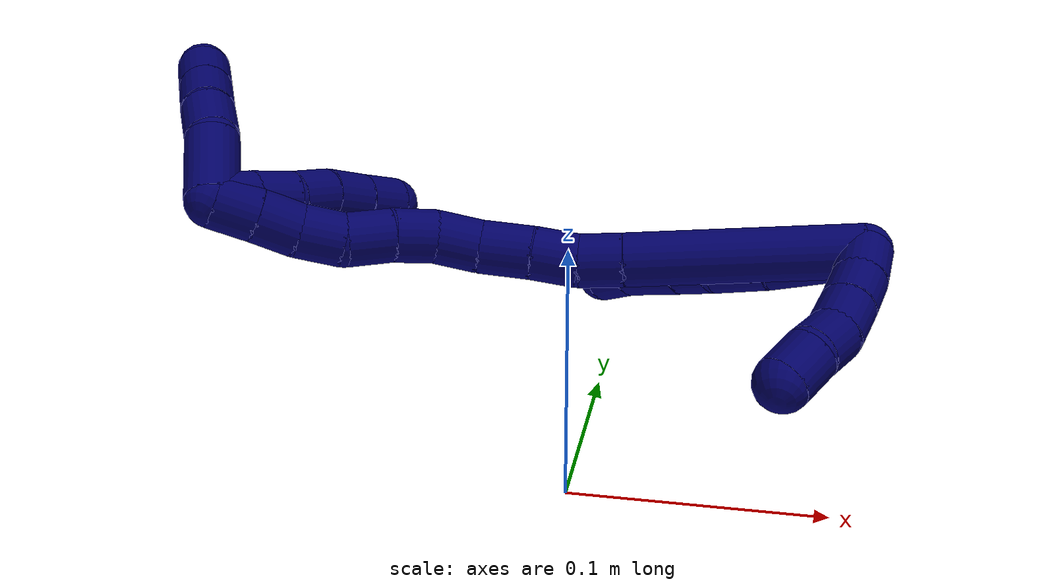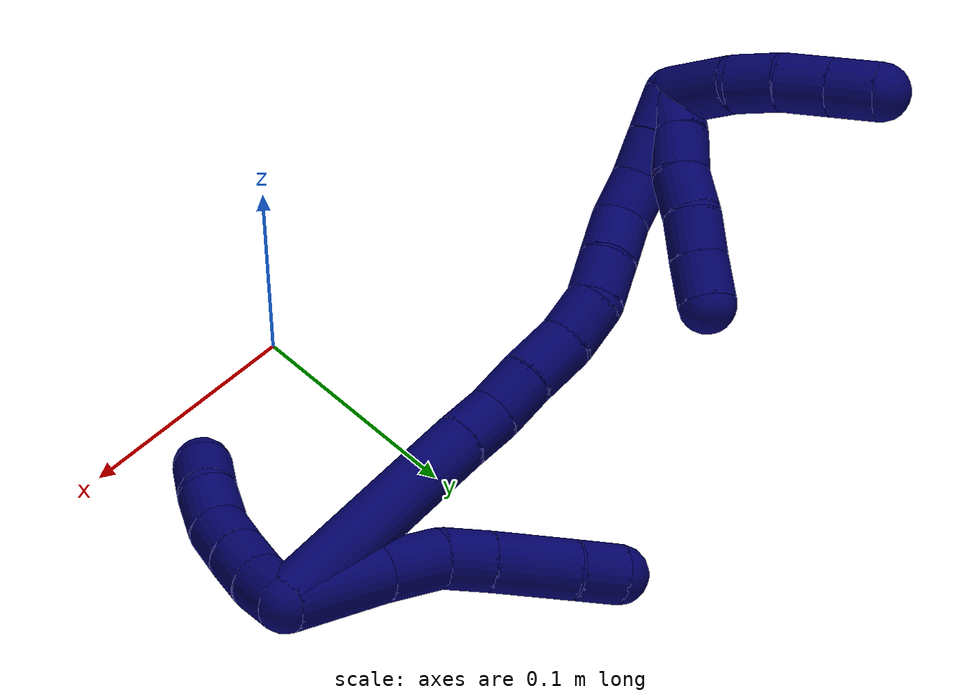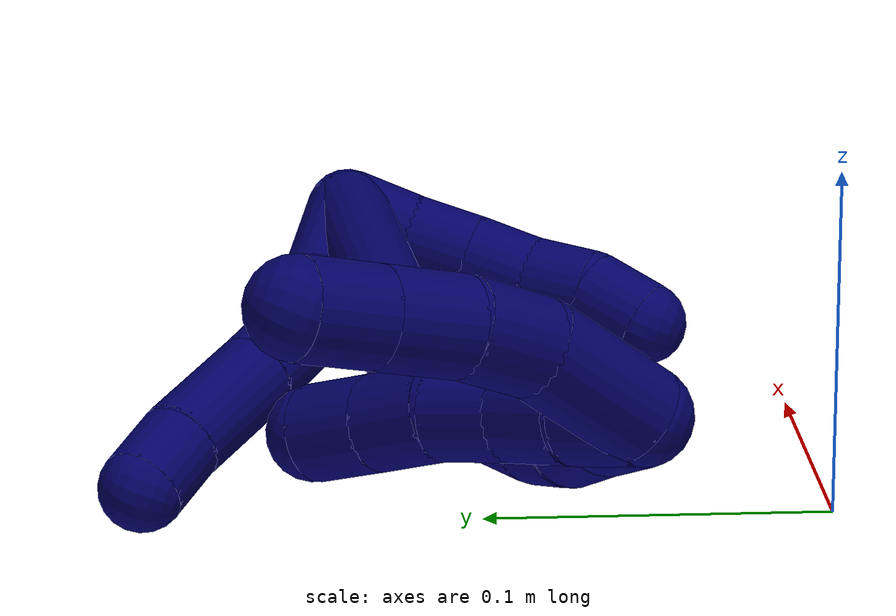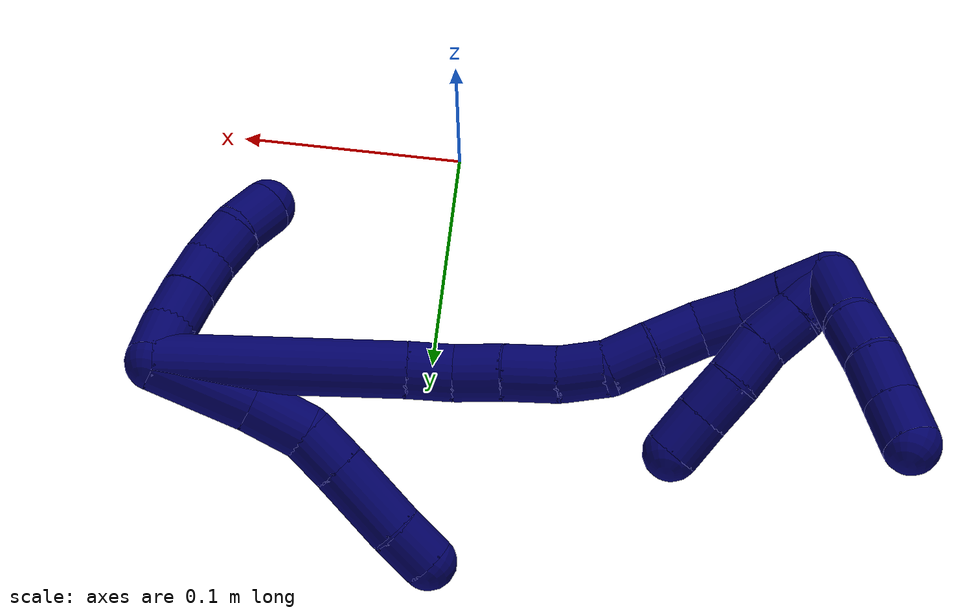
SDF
<sdf version="1.7">
 <world name="default">
  <model name="7">
   <static>0</static>
   <link name="7">
    <collision name="collision-cylinder-e_1_2_8">
     <pose>-0.02218 0.004658 -0.000812 -1.74347 -1.36075 1.53274</pose>
     <geometry><cylinder><radius>0.0125</radius><length>0.045357</length></cylinder></geometry>
     <surface>
      <friction><ode><mu>1.16</mu><mu2>1.16</mu2><slip1>0</slip1><slip2>0</slip2></ode></friction>
      <contact><ode><kp>1e+06</kp><kd>1</kd><max_vel>0</max_vel><min_depth>0.001</min_depth></ode></contact>
     </surface>
    </collision>
    <visual name="visual-cylinder-e_1_2_8">
     <pose>-0.02218 0.004658 -0.000812 -1.74347 -1.36075 1.53274</pose>
     <geometry><cylinder><radius>0.0125</radius><length>0.045357</length></cylinder></geometry>
     <material><ambient>0.003922 0 0.403922 1</ambient></material>
    </visual>
    <collision name="collision-cylinder-e_2_8_9">
     <pose>-0.057589 0.012104 -0.000741 -1.26364 -1.35324 1.06278</pose>
     <geometry><cylinder><radius>0.0125</radius><length>0.027096</length></cylinder></geometry>
     <surface>
      <friction><ode><mu>1.16</mu><mu2>1.16</mu2><slip1>0</slip1><slip2>0</slip2></ode></friction>
      <contact><ode><kp>1e+06</kp><kd>1</kd><max_vel>0</max_vel><min_depth>0.001</min_depth></ode></contact>
     </surface>
    </collision>
    <visual name="visual-cylinder-e_2_8_9">
     <pose>-0.057589 0.012104 -0.000741 -1.26364 -1.35324 1.06278</pose>
     <geometry><cylinder><radius>0.0125</radius><length>0.027096</length></cylinder></geometry>
     <material><ambient>0.003922 0 0.403922 1</ambient></material>
    </visual>
    <collision name="collision-cylinder-e_3_9_10">
     <pose>-0.079904 0.018822 0.003365 -0.884162 -1.06079 0.541529</pose>
     <geometry><cylinder><radius>0.0125</radius><length>0.020823</length></cylinder></geometry>
     <surface>
      <friction><ode><mu>1.16</mu><mu2>1.16</mu2><slip1>0</slip1><slip2>0</slip2></ode></friction>
      <contact><ode><kp>1e+06</kp><kd>1</kd><max_vel>0</max_vel><min_depth>0.001</min_depth></ode></contact>
     </surface>
    </collision>
    <visual name="visual-cylinder-e_3_9_10">
     <pose>-0.079904 0.018822 0.003365 -0.884162 -1.06079 0.541529</pose>
     <geometry><cylinder><radius>0.0125</radius><length>0.020823</length></cylinder></geometry>
     <material><ambient>0.003922 0 0.403922 1</ambient></material>
    </visual>
    <collision name="collision-cylinder-e_4_10_11">
     <pose>-0.104548 0.029785 0.012709 -0.854528 -1.03088 0.504887</pose>
     <geometry><cylinder><radius>0.0125</radius><length>0.036274</length></cylinder></geometry>
     <surface>
      <friction><ode><mu>1.16</mu><mu2>1.16</mu2><slip1>0</slip1><slip2>0</slip2></ode></friction>
      <contact><ode><kp>1e+06</kp><kd>1</kd><max_vel>0</max_vel><min_depth>0.001</min_depth></ode></contact>
     </surface>
    </collision>
    <visual name="visual-cylinder-e_4_10_11">
     <pose>-0.104548 0.029785 0.012709 -0.854528 -1.03088 0.504887</pose>
     <geometry><cylinder><radius>0.0125</radius><length>0.036274</length></cylinder></geometry>
     <material><ambient>0.003922 0 0.403922 1</ambient></material>
    </visual>
    <collision name="collision-cylinder-e_5_11_6">
     <pose>-0.128963 0.041339 0.021207 -1.08688 -1.04773 0.671563</pose>
     <geometry><cylinder><radius>0.0125</radius><length>0.02045</length></cylinder></geometry>
     <surface>
      <friction><ode><mu>1.16</mu><mu2>1.16</mu2><slip1>0</slip1><slip2>0</slip2></ode></friction>
      <contact><ode><kp>1e+06</kp><kd>1</kd><max_vel>0</max_vel><min_depth>0.001</min_depth></ode></contact>
     </surface>
    </collision>
    <visual name="visual-cylinder-e_5_11_6">
     <pose>-0.128963 0.041339 0.021207 -1.08688 -1.04773 0.671563</pose>
     <geometry><cylinder><radius>0.0125</radius><length>0.02045</length></cylinder></geometry>
     <material><ambient>0.003922 0 0.403922 1</ambient></material>
    </visual>
    <collision name="collision-cylinder-e_1_2_12">
     <pose>-1.1e-05 3.8e-05 -0.01 -3.13783 -0.001119 0.578042</pose>
     <geometry><cylinder><radius>0.0125</radius><length>0.02</length></cylinder></geometry>
     <surface>
      <friction><ode><mu>1.16</mu><mu2>1.16</mu2><slip1>0</slip1><slip2>0</slip2></ode></friction>
      <contact><ode><kp>1e+06</kp><kd>1</kd><max_vel>0</max_vel><min_depth>0.001</min_depth></ode></contact>
     </surface>
    </collision>
    <visual name="visual-cylinder-e_1_2_12">
     <pose>-1.1e-05 3.8e-05 -0.01 -3.13783 -0.001119 0.578042</pose>
     <geometry><cylinder><radius>0.0125</radius><length>0.02</length></cylinder></geometry>
     <material><ambient>0.003922 0 0.403922 1</ambient></material>
    </visual>
    <collision name="collision-cylinder-e_2_12_13">
     <pose>-0.00111 -0.000955 -0.029887 3.03773 -0.109009 -1.61923</pose>
     <geometry><cylinder><radius>0.0125</radius><length>0.02</length></cylinder></geometry>
     <surface>
      <friction><ode><mu>1.16</mu><mu2>1.16</mu2><slip1>0</slip1><slip2>0</slip2></ode></friction>
      <contact><ode><kp>1e+06</kp><kd>1</kd><max_vel>0</max_vel><min_depth>0.001</min_depth></ode></contact>
     </surface>
    </collision>
    <visual name="visual-cylinder-e_2_12_13">
     <pose>-0.00111 -0.000955 -0.029887 3.03773 -0.109009 -1.61923</pose>
     <geometry><cylinder><radius>0.0125</radius><length>0.02</length></cylinder></geometry>
     <material><ambient>0.003922 0 0.403922 1</ambient></material>
    </visual>
    <collision name="collision-cylinder-e_3_13_14">
     <pose>-0.003742 -0.002809 -0.04962 3.05823 -0.154988 -2.15584</pose>
     <geometry><cylinder><radius>0.0125</radius><length>0.02</length></cylinder></geometry>
     <surface>
      <friction><ode><mu>1.16</mu><mu2>1.16</mu2><slip1>0</slip1><slip2>0</slip2></ode></friction>
      <contact><ode><kp>1e+06</kp><kd>1</kd><max_vel>0</max_vel><min_depth>0.001</min_depth></ode></contact>
     </surface>
    </collision>
    <visual name="visual-cylinder-e_3_13_14">
     <pose>-0.003742 -0.002809 -0.04962 3.05823 -0.154988 -2.15584</pose>
     <geometry><cylinder><radius>0.0125</radius><length>0.02</length></cylinder></geometry>
     <material><ambient>0.003922 0 0.403922 1</ambient></material>
    </visual>
    <collision name="collision-cylinder-e_4_14_15">
     <pose>-0.008541 -0.006413 -0.068503 2.84301 -0.331585 -1.67719</pose>
     <geometry><cylinder><radius>0.0125</radius><length>0.02</length></cylinder></geometry>
     <surface>
      <friction><ode><mu>1.16</mu><mu2>1.16</mu2><slip1>0</slip1><slip2>0</slip2></ode></friction>
      <contact><ode><kp>1e+06</kp><kd>1</kd><max_vel>0</max_vel><min_depth>0.001</min_depth></ode></contact>
     </surface>
    </collision>
    <visual name="visual-cylinder-e_4_14_15">
     <pose>-0.008541 -0.006413 -0.068503 2.84301 -0.331585 -1.67719</pose>
     <geometry><cylinder><radius>0.0125</radius><length>0.02</length></cylinder></geometry>
     <material><ambient>0.003922 0 0.403922 1</ambient></material>
    </visual>
    <collision name="collision-cylinder-e_5_15_5">
     <pose>-0.01603 -0.009386 -0.086597 3.12038 -0.437184 -3.04618</pose>
     <geometry><cylinder><radius>0.0125</radius><length>0.02</length></cylinder></geometry>
     <surface>
      <friction><ode><mu>1.16</mu><mu2>1.16</mu2><slip1>0</slip1><slip2>0</slip2></ode></friction>
      <contact><ode><kp>1e+06</kp><kd>1</kd><max_vel>0</max_vel><min_depth>0.001</min_depth></ode></contact>
     </surface>
    </collision>
    <visual name="visual-cylinder-e_5_15_5">
     <pose>-0.01603 -0.009386 -0.086597 3.12038 -0.437184 -3.04618</pose>
     <geometry><cylinder><radius>0.0125</radius><length>0.02</length></cylinder></geometry>
     <material><ambient>0.003922 0 0.403922 1</ambient></material>
    </visual>
    <collision name="collision-cylinder-e_1_2_16">
     <pose>-0.052044 -0.005808 -0.014183 2.75291 -1.28441 -2.62698</pose>
     <geometry><cylinder><radius>0.0125</radius><length>0.108507</length></cylinder></geometry>
     <surface>
      <friction><ode><mu>1.16</mu><mu2>1.16</mu2><slip1>0</slip1><slip2>0</slip2></ode></friction>
      <contact><ode><kp>1e+06</kp><kd>1</kd><max_vel>0</max_vel><min_depth>0.001</min_depth></ode></contact>
     </surface>
    </collision>
    <visual name="visual-cylinder-e_1_2_16">
     <pose>-0.052044 -0.005808 -0.014183 2.75291 -1.28441 -2.62698</pose>
     <geometry><cylinder><radius>0.0125</radius><length>0.108507</length></cylinder></geometry>
     <material><ambient>0.003922 0 0.403922 1</ambient></material>
    </visual>
    <collision name="collision-cylinder-e_2_16_17">
     <pose>-0.114121 -0.012607 -0.030697 2.73981 -1.32347 -2.63015</pose>
     <geometry><cylinder><radius>0.0125</radius><length>0.020696</length></cylinder></geometry>
     <surface>
      <friction><ode><mu>1.16</mu><mu2>1.16</mu2><slip1>0</slip1><slip2>0</slip2></ode></friction>
      <contact><ode><kp>1e+06</kp><kd>1</kd><max_vel>0</max_vel><min_depth>0.001</min_depth></ode></contact>
     </surface>
    </collision>
    <visual name="visual-cylinder-e_2_16_17">
     <pose>-0.114121 -0.012607 -0.030697 2.73981 -1.32347 -2.63015</pose>
     <geometry><cylinder><radius>0.0125</radius><length>0.020696</length></cylinder></geometry>
     <material><ambient>0.003922 0 0.403922 1</ambient></material>
    </visual>
    <collision name="collision-cylinder-e_3_17_18">
     <pose>-0.134291 -0.016784 -0.034694 2.05241 -1.22988 -1.72386</pose>
     <geometry><cylinder><radius>0.0125</radius><length>0.021511</length></cylinder></geometry>
     <surface>
      <friction><ode><mu>1.16</mu><mu2>1.16</mu2><slip1>0</slip1><slip2>0</slip2></ode></friction>
      <contact><ode><kp>1e+06</kp><kd>1</kd><max_vel>0</max_vel><min_depth>0.001</min_depth></ode></contact>
     </surface>
    </collision>
    <visual name="visual-cylinder-e_3_17_18">
     <pose>-0.134291 -0.016784 -0.034694 2.05241 -1.22988 -1.72386</pose>
     <geometry><cylinder><radius>0.0125</radius><length>0.021511</length></cylinder></geometry>
     <material><ambient>0.003922 0 0.403922 1</ambient></material>
    </visual>
    <collision name="collision-cylinder-e_4_18_19">
     <pose>-0.156114 -0.02267 -0.038235 2.17789 -1.29668 -1.93322</pose>
     <geometry><cylinder><radius>0.0125</radius><length>0.024278</length></cylinder></geometry>
     <surface>
      <friction><ode><mu>1.16</mu><mu2>1.16</mu2><slip1>0</slip1><slip2>0</slip2></ode></friction>
      <contact><ode><kp>1e+06</kp><kd>1</kd><max_vel>0</max_vel><min_depth>0.001</min_depth></ode></contact>
     </surface>
    </collision>
    <visual name="visual-cylinder-e_4_18_19">
     <pose>-0.156114 -0.02267 -0.038235 2.17789 -1.29668 -1.93322</pose>
     <geometry><cylinder><radius>0.0125</radius><length>0.024278</length></cylinder></geometry>
     <material><ambient>0.003922 0 0.403922 1</ambient></material>
    </visual>
    <collision name="collision-cylinder-e_5_19_20">
     <pose>-0.177395 -0.029619 -0.042281 2.04311 -1.10923 -1.58283</pose>
     <geometry><cylinder><radius>0.0125</radius><length>0.021434</length></cylinder></geometry>
     <surface>
      <friction><ode><mu>1.16</mu><mu2>1.16</mu2><slip1>0</slip1><slip2>0</slip2></ode></friction>
      <contact><ode><kp>1e+06</kp><kd>1</kd><max_vel>0</max_vel><min_depth>0.001</min_depth></ode></contact>
     </surface>
    </collision>
    <visual name="visual-cylinder-e_5_19_20">
     <pose>-0.177395 -0.029619 -0.042281 2.04311 -1.10923 -1.58283</pose>
     <geometry><cylinder><radius>0.0125</radius><length>0.021434</length></cylinder></geometry>
     <material><ambient>0.003922 0 0.403922 1</ambient></material>
    </visual>
    <collision name="collision-cylinder-e_6_20_21">
     <pose>-0.194775 -0.038102 -0.049717 2.46453 -0.856073 -1.8271</pose>
     <geometry><cylinder><radius>0.0125</radius><length>0.020615</length></cylinder></geometry>
     <surface>
      <friction><ode><mu>1.16</mu><mu2>1.16</mu2><slip1>0</slip1><slip2>0</slip2></ode></friction>
      <contact><ode><kp>1e+06</kp><kd>1</kd><max_vel>0</max_vel><min_depth>0.001</min_depth></ode></contact>
     </surface>
    </collision>
    <visual name="visual-cylinder-e_6_20_21">
     <pose>-0.194775 -0.038102 -0.049717 2.46453 -0.856073 -1.8271</pose>
     <geometry><cylinder><radius>0.0125</radius><length>0.020615</length></cylinder></geometry>
     <material><ambient>0.003922 0 0.403922 1</ambient></material>
    </visual>
    <collision name="collision-cylinder-e_7_21_22">
     <pose>-0.210961 -0.045686 -0.061402 2.66038 -0.859395 -2.15843</pose>
     <geometry><cylinder><radius>0.0125</radius><length>0.022182</length></cylinder></geometry>
     <surface>
      <friction><ode><mu>1.16</mu><mu2>1.16</mu2><slip1>0</slip1><slip2>0</slip2></ode></friction>
      <contact><ode><kp>1e+06</kp><kd>1</kd><max_vel>0</max_vel><min_depth>0.001</min_depth></ode></contact>
     </surface>
    </collision>
    <visual name="visual-cylinder-e_7_21_22">
     <pose>-0.210961 -0.045686 -0.061402 2.66038 -0.859395 -2.15843</pose>
     <geometry><cylinder><radius>0.0125</radius><length>0.022182</length></cylinder></geometry>
     <material><ambient>0.003922 0 0.403922 1</ambient></material>
    </visual>
    <collision name="collision-cylinder-e_8_22_23">
     <pose>-0.227817 -0.054046 -0.071146 2.15692 -0.952691 -1.532</pose>
     <geometry><cylinder><radius>0.0125</radius><length>0.020748</length></cylinder></geometry>
     <surface>
      <friction><ode><mu>1.16</mu><mu2>1.16</mu2><slip1>0</slip1><slip2>0</slip2></ode></friction>
      <contact><ode><kp>1e+06</kp><kd>1</kd><max_vel>0</max_vel><min_depth>0.001</min_depth></ode></contact>
     </surface>
    </collision>
    <visual name="visual-cylinder-e_8_22_23">
     <pose>-0.227817 -0.054046 -0.071146 2.15692 -0.952691 -1.532</pose>
     <geometry><cylinder><radius>0.0125</radius><length>0.020748</length></cylinder></geometry>
     <material><ambient>0.003922 0 0.403922 1</ambient></material>
    </visual>
    <collision name="collision-cylinder-e_9_23_24">
     <pose>-0.243551 -0.065342 -0.07721 1.98164 -0.815164 -1.16541</pose>
     <geometry><cylinder><radius>0.0125</radius><length>0.020002</length></cylinder></geometry>
     <surface>
      <friction><ode><mu>1.16</mu><mu2>1.16</mu2><slip1>0</slip1><slip2>0</slip2></ode></friction>
      <contact><ode><kp>1e+06</kp><kd>1</kd><max_vel>0</max_vel><min_depth>0.001</min_depth></ode></contact>
     </surface>
    </collision>
    <visual name="visual-cylinder-e_9_23_24">
     <pose>-0.243551 -0.065342 -0.07721 1.98164 -0.815164 -1.16541</pose>
     <geometry><cylinder><radius>0.0125</radius><length>0.020002</length></cylinder></geometry>
     <material><ambient>0.003922 0 0.403922 1</ambient></material>
    </visual>
    <collision name="collision-cylinder-e_10_24_1">
     <pose>-0.258216 -0.077695 -0.082934 2.02808 -0.829693 -1.23155</pose>
     <geometry><cylinder><radius>0.0125</radius><length>0.020026</length></cylinder></geometry>
     <surface>
      <friction><ode><mu>1.16</mu><mu2>1.16</mu2><slip1>0</slip1><slip2>0</slip2></ode></friction>
      <contact><ode><kp>1e+06</kp><kd>1</kd><max_vel>0</max_vel><min_depth>0.001</min_depth></ode></contact>
     </surface>
    </collision>
    <visual name="visual-cylinder-e_10_24_1">
     <pose>-0.258216 -0.077695 -0.082934 2.02808 -0.829693 -1.23155</pose>
     <geometry><cylinder><radius>0.0125</radius><length>0.020026</length></cylinder></geometry>
     <material><ambient>0.003922 0 0.403922 1</ambient></material>
    </visual>
    <collision name="collision-cylinder-e_1_1_25">
     <pose>-0.261206 -0.078739 -0.078471 -0.593204 0.455261 -0.141353</pose>
     <geometry><cylinder><radius>0.0125</radius><length>0.02</length></cylinder></geometry>
     <surface>
      <friction><ode><mu>1.16</mu><mu2>1.16</mu2><slip1>0</slip1><slip2>0</slip2></ode></friction>
      <contact><ode><kp>1e+06</kp><kd>1</kd><max_vel>0</max_vel><min_depth>0.001</min_depth></ode></contact>
     </surface>
    </collision>
    <visual name="visual-cylinder-e_1_1_25">
     <pose>-0.261206 -0.078739 -0.078471 -0.593204 0.455261 -0.141353</pose>
     <geometry><cylinder><radius>0.0125</radius><length>0.02</length></cylinder></geometry>
     <material><ambient>0.003922 0 0.403922 1</ambient></material>
    </visual>
    <collision name="collision-cylinder-e_2_25_26">
     <pose>-0.251419 -0.068695 -0.064264 -0.639006 0.569316 -0.193008</pose>
     <geometry><cylinder><radius>0.0125</radius><length>0.02</length></cylinder></geometry>
     <surface>
      <friction><ode><mu>1.16</mu><mu2>1.16</mu2><slip1>0</slip1><slip2>0</slip2></ode></friction>
      <contact><ode><kp>1e+06</kp><kd>1</kd><max_vel>0</max_vel><min_depth>0.001</min_depth></ode></contact>
     </surface>
    </collision>
    <visual name="visual-cylinder-e_2_25_26">
     <pose>-0.251419 -0.068695 -0.064264 -0.639006 0.569316 -0.193008</pose>
     <geometry><cylinder><radius>0.0125</radius><length>0.02</length></cylinder></geometry>
     <material><ambient>0.003922 0 0.403922 1</ambient></material>
    </visual>
    <collision name="collision-cylinder-e_3_26_27">
     <pose>-0.242443 -0.058635 -0.049643 -0.569861 0.366696 -0.108519</pose>
     <geometry><cylinder><radius>0.0125</radius><length>0.02</length></cylinder></geometry>
     <surface>
      <friction><ode><mu>1.16</mu><mu2>1.16</mu2><slip1>0</slip1><slip2>0</slip2></ode></friction>
      <contact><ode><kp>1e+06</kp><kd>1</kd><max_vel>0</max_vel><min_depth>0.001</min_depth></ode></contact>
     </surface>
    </collision>
    <visual name="visual-cylinder-e_3_26_27">
     <pose>-0.242443 -0.058635 -0.049643 -0.569861 0.366696 -0.108519</pose>
     <geometry><cylinder><radius>0.0125</radius><length>0.02</length></cylinder></geometry>
     <material><ambient>0.003922 0 0.403922 1</ambient></material>
    </visual>
    <collision name="collision-cylinder-e_4_27_28">
     <pose>-0.234773 -0.047269 -0.035206 -0.76624 0.420804 -0.171723</pose>
     <geometry><cylinder><radius>0.0125</radius><length>0.02</length></cylinder></geometry>
     <surface>
      <friction><ode><mu>1.16</mu><mu2>1.16</mu2><slip1>0</slip1><slip2>0</slip2></ode></friction>
      <contact><ode><kp>1e+06</kp><kd>1</kd><max_vel>0</max_vel><min_depth>0.001</min_depth></ode></contact>
     </surface>
    </collision>
    <visual name="visual-cylinder-e_4_27_28">
     <pose>-0.234773 -0.047269 -0.035206 -0.76624 0.420804 -0.171723</pose>
     <geometry><cylinder><radius>0.0125</radius><length>0.02</length></cylinder></geometry>
     <material><ambient>0.003922 0 0.403922 1</ambient></material>
    </visual>
    <collision name="collision-cylinder-e_5_28_4">
     <pose>-0.226857 -0.034699 -0.021819 -0.741766 0.393102 -0.15456</pose>
     <geometry><cylinder><radius>0.0125</radius><length>0.02</length></cylinder></geometry>
     <surface>
      <friction><ode><mu>1.16</mu><mu2>1.16</mu2><slip1>0</slip1><slip2>0</slip2></ode></friction>
      <contact><ode><kp>1e+06</kp><kd>1</kd><max_vel>0</max_vel><min_depth>0.001</min_depth></ode></contact>
     </surface>
    </collision>
    <visual name="visual-cylinder-e_5_28_4">
     <pose>-0.226857 -0.034699 -0.021819 -0.741766 0.393102 -0.15456</pose>
     <geometry><cylinder><radius>0.0125</radius><length>0.02</length></cylinder></geometry>
     <material><ambient>0.003922 0 0.403922 1</ambient></material>
    </visual>
    <collision name="collision-cylinder-e_1_1_29">
     <pose>-0.271642 -0.089392 -0.070834 0.357357 -0.358824 -0.065486</pose>
     <geometry><cylinder><radius>0.0125</radius><length>0.034393</length></cylinder></geometry>
     <surface>
      <friction><ode><mu>1.16</mu><mu2>1.16</mu2><slip1>0</slip1><slip2>0</slip2></ode></friction>
      <contact><ode><kp>1e+06</kp><kd>1</kd><max_vel>0</max_vel><min_depth>0.001</min_depth></ode></contact>
     </surface>
    </collision>
    <visual name="visual-cylinder-e_1_1_29">
     <pose>-0.271642 -0.089392 -0.070834 0.357357 -0.358824 -0.065486</pose>
     <geometry><cylinder><radius>0.0125</radius><length>0.034393</length></cylinder></geometry>
     <material><ambient>0.003922 0 0.403922 1</ambient></material>
    </visual>
    <collision name="collision-cylinder-e_2_29_30">
     <pose>-0.283418 -0.096351 -0.046589 0.143847 -0.554817 -0.041025</pose>
     <geometry><cylinder><radius>0.0125</radius><length>0.021781</length></cylinder></geometry>
     <surface>
      <friction><ode><mu>1.16</mu><mu2>1.16</mu2><slip1>0</slip1><slip2>0</slip2></ode></friction>
      <contact><ode><kp>1e+06</kp><kd>1</kd><max_vel>0</max_vel><min_depth>0.001</min_depth></ode></contact>
     </surface>
    </collision>
    <visual name="visual-cylinder-e_2_29_30">
     <pose>-0.283418 -0.096351 -0.046589 0.143847 -0.554817 -0.041025</pose>
     <geometry><cylinder><radius>0.0125</radius><length>0.021781</length></cylinder></geometry>
     <material><ambient>0.003922 0 0.403922 1</ambient></material>
    </visual>
    <collision name="collision-cylinder-e_3_30_31">
     <pose>-0.295201 -0.097376 -0.027803 -0.031393 -0.560633 0.009039</pose>
     <geometry><cylinder><radius>0.0125</radius><length>0.022738</length></cylinder></geometry>
     <surface>
      <friction><ode><mu>1.16</mu><mu2>1.16</mu2><slip1>0</slip1><slip2>0</slip2></ode></friction>
      <contact><ode><kp>1e+06</kp><kd>1</kd><max_vel>0</max_vel><min_depth>0.001</min_depth></ode></contact>
     </surface>
    </collision>
    <visual name="visual-cylinder-e_3_30_31">
     <pose>-0.295201 -0.097376 -0.027803 -0.031393 -0.560633 0.009039</pose>
     <geometry><cylinder><radius>0.0125</radius><length>0.022738</length></cylinder></geometry>
     <material><ambient>0.003922 0 0.403922 1</ambient></material>
    </visual>
    <collision name="collision-cylinder-e_4_31_3">
     <pose>-0.306854 -0.096793 -0.009255 -0.031411 -0.560815 0.009047</pose>
     <geometry><cylinder><radius>0.0125</radius><length>0.021087</length></cylinder></geometry>
     <surface>
      <friction><ode><mu>1.16</mu><mu2>1.16</mu2><slip1>0</slip1><slip2>0</slip2></ode></friction>
      <contact><ode><kp>1e+06</kp><kd>1</kd><max_vel>0</max_vel><min_depth>0.001</min_depth></ode></contact>
     </surface>
    </collision>
    <visual name="visual-cylinder-e_4_31_3">
     <pose>-0.306854 -0.096793 -0.009255 -0.031411 -0.560815 0.009047</pose>
     <geometry><cylinder><radius>0.0125</radius><length>0.021087</length></cylinder></geometry>
     <material><ambient>0.003922 0 0.403922 1</ambient></material>
    </visual>
    <collision name="collision-sphere-3">
     <pose>-0.312462 -0.096513 -0.000331 0 -0 0</pose>
     <geometry><sphere><radius>0.0125</radius></sphere></geometry>
     <surface>
      <friction><ode><mu>1.16</mu><mu2>1.16</mu2><slip1>0</slip1><slip2>0</slip2></ode></friction>
      <contact><ode><kp>1e+06</kp><kd>1</kd><max_vel>0</max_vel><min_depth>0.001</min_depth></ode></contact>
     </surface>
    </collision>
    <visual name="visual-sphere-3">
     <pose>-0.312462 -0.096513 -0.000331 0 -0 0</pose>
     <geometry><sphere><radius>0.0125</radius></sphere></geometry>
     <material><ambient>0.003922 0 0.403922 1</ambient></material>
    </visual>
    <collision name="collision-sphere-31">
     <pose>-0.301246 -0.097074 -0.018179 0 -0 0</pose>
     <geometry><sphere><radius>0.0125</radius></sphere></geometry>
     <surface>
      <friction><ode><mu>1.16</mu><mu2>1.16</mu2><slip1>0</slip1><slip2>0</slip2></ode></friction>
      <contact><ode><kp>1e+06</kp><kd>1</kd><max_vel>0</max_vel><min_depth>0.001</min_depth></ode></contact>
     </surface>
    </collision>
    <visual name="visual-sphere-31">
     <pose>-0.301246 -0.097074 -0.018179 0 -0 0</pose>
     <geometry><sphere><radius>0.0125</radius></sphere></geometry>
     <material><ambient>0.003922 0 0.403922 1</ambient></material>
    </visual>
    <collision name="collision-sphere-30">
     <pose>-0.289155 -0.097678 -0.037427 0 -0 0</pose>
     <geometry><sphere><radius>0.0125</radius></sphere></geometry>
     <surface>
      <friction><ode><mu>1.16</mu><mu2>1.16</mu2><slip1>0</slip1><slip2>0</slip2></ode></friction>
      <contact><ode><kp>1e+06</kp><kd>1</kd><max_vel>0</max_vel><min_depth>0.001</min_depth></ode></contact>
     </surface>
    </collision>
    <visual name="visual-sphere-30">
     <pose>-0.289155 -0.097678 -0.037427 0 -0 0</pose>
     <geometry><sphere><radius>0.0125</radius></sphere></geometry>
     <material><ambient>0.003922 0 0.403922 1</ambient></material>
    </visual>
    <collision name="collision-sphere-29">
     <pose>-0.277681 -0.095024 -0.05575 0 -0 0</pose>
     <geometry><sphere><radius>0.0125</radius></sphere></geometry>
     <surface>
      <friction><ode><mu>1.16</mu><mu2>1.16</mu2><slip1>0</slip1><slip2>0</slip2></ode></friction>
      <contact><ode><kp>1e+06</kp><kd>1</kd><max_vel>0</max_vel><min_depth>0.001</min_depth></ode></contact>
     </surface>
    </collision>
    <visual name="visual-sphere-29">
     <pose>-0.277681 -0.095024 -0.05575 0 -0 0</pose>
     <geometry><sphere><radius>0.0125</radius></sphere></geometry>
     <material><ambient>0.003922 0 0.403922 1</ambient></material>
    </visual>
    <collision name="collision-sphere-4">
     <pose>-0.223027 -0.028459 -0.015009 0 -0 0</pose>
     <geometry><sphere><radius>0.0125</radius></sphere></geometry>
     <surface>
      <friction><ode><mu>1.16</mu><mu2>1.16</mu2><slip1>0</slip1><slip2>0</slip2></ode></friction>
      <contact><ode><kp>1e+06</kp><kd>1</kd><max_vel>0</max_vel><min_depth>0.001</min_depth></ode></contact>
     </surface>
    </collision>
    <visual name="visual-sphere-4">
     <pose>-0.223027 -0.028459 -0.015009 0 -0 0</pose>
     <geometry><sphere><radius>0.0125</radius></sphere></geometry>
     <material><ambient>0.003922 0 0.403922 1</ambient></material>
    </visual>
    <collision name="collision-sphere-28">
     <pose>-0.230688 -0.04094 -0.02863 0 -0 0</pose>
     <geometry><sphere><radius>0.0125</radius></sphere></geometry>
     <surface>
      <friction><ode><mu>1.16</mu><mu2>1.16</mu2><slip1>0</slip1><slip2>0</slip2></ode></friction>
      <contact><ode><kp>1e+06</kp><kd>1</kd><max_vel>0</max_vel><min_depth>0.001</min_depth></ode></contact>
     </surface>
    </collision>
    <visual name="visual-sphere-28">
     <pose>-0.230688 -0.04094 -0.02863 0 -0 0</pose>
     <geometry><sphere><radius>0.0125</radius></sphere></geometry>
     <material><ambient>0.003922 0 0.403922 1</ambient></material>
    </visual>
    <collision name="collision-sphere-27">
     <pose>-0.238858 -0.053599 -0.041783 0 -0 0</pose>
     <geometry><sphere><radius>0.0125</radius></sphere></geometry>
     <surface>
      <friction><ode><mu>1.16</mu><mu2>1.16</mu2><slip1>0</slip1><slip2>0</slip2></ode></friction>
      <contact><ode><kp>1e+06</kp><kd>1</kd><max_vel>0</max_vel><min_depth>0.001</min_depth></ode></contact>
     </surface>
    </collision>
    <visual name="visual-sphere-27">
     <pose>-0.238858 -0.053599 -0.041783 0 -0 0</pose>
     <geometry><sphere><radius>0.0125</radius></sphere></geometry>
     <material><ambient>0.003922 0 0.403922 1</ambient></material>
    </visual>
    <collision name="collision-sphere-26">
     <pose>-0.246028 -0.063672 -0.057503 0 -0 0</pose>
     <geometry><sphere><radius>0.0125</radius></sphere></geometry>
     <surface>
      <friction><ode><mu>1.16</mu><mu2>1.16</mu2><slip1>0</slip1><slip2>0</slip2></ode></friction>
      <contact><ode><kp>1e+06</kp><kd>1</kd><max_vel>0</max_vel><min_depth>0.001</min_depth></ode></contact>
     </surface>
    </collision>
    <visual name="visual-sphere-26">
     <pose>-0.246028 -0.063672 -0.057503 0 -0 0</pose>
     <geometry><sphere><radius>0.0125</radius></sphere></geometry>
     <material><ambient>0.003922 0 0.403922 1</ambient></material>
    </visual>
    <collision name="collision-sphere-25">
     <pose>-0.256809 -0.073718 -0.071024 0 -0 0</pose>
     <geometry><sphere><radius>0.0125</radius></sphere></geometry>
     <surface>
      <friction><ode><mu>1.16</mu><mu2>1.16</mu2><slip1>0</slip1><slip2>0</slip2></ode></friction>
      <contact><ode><kp>1e+06</kp><kd>1</kd><max_vel>0</max_vel><min_depth>0.001</min_depth></ode></contact>
     </surface>
    </collision>
    <visual name="visual-sphere-25">
     <pose>-0.256809 -0.073718 -0.071024 0 -0 0</pose>
     <geometry><sphere><radius>0.0125</radius></sphere></geometry>
     <material><ambient>0.003922 0 0.403922 1</ambient></material>
    </visual>
    <collision name="collision-sphere-1">
     <pose>-0.265603 -0.08376 -0.085918 0 -0 0</pose>
     <geometry><sphere><radius>0.0125</radius></sphere></geometry>
     <surface>
      <friction><ode><mu>1.16</mu><mu2>1.16</mu2><slip1>0</slip1><slip2>0</slip2></ode></friction>
      <contact><ode><kp>1e+06</kp><kd>1</kd><max_vel>0</max_vel><min_depth>0.001</min_depth></ode></contact>
     </surface>
    </collision>
    <visual name="visual-sphere-1">
     <pose>-0.265603 -0.08376 -0.085918 0 -0 0</pose>
     <geometry><sphere><radius>0.0125</radius></sphere></geometry>
     <material><ambient>0.003922 0 0.403922 1</ambient></material>
    </visual>
    <collision name="collision-sphere-24">
     <pose>-0.25083 -0.071629 -0.079949 0 -0 0</pose>
     <geometry><sphere><radius>0.0125</radius></sphere></geometry>
     <surface>
      <friction><ode><mu>1.16</mu><mu2>1.16</mu2><slip1>0</slip1><slip2>0</slip2></ode></friction>
      <contact><ode><kp>1e+06</kp><kd>1</kd><max_vel>0</max_vel><min_depth>0.001</min_depth></ode></contact>
     </surface>
    </collision>
    <visual name="visual-sphere-24">
     <pose>-0.25083 -0.071629 -0.079949 0 -0 0</pose>
     <geometry><sphere><radius>0.0125</radius></sphere></geometry>
     <material><ambient>0.003922 0 0.403922 1</ambient></material>
    </visual>
    <collision name="collision-sphere-23">
     <pose>-0.236272 -0.059055 -0.074471 0 -0 0</pose>
     <geometry><sphere><radius>0.0125</radius></sphere></geometry>
     <surface>
      <friction><ode><mu>1.16</mu><mu2>1.16</mu2><slip1>0</slip1><slip2>0</slip2></ode></friction>
      <contact><ode><kp>1e+06</kp><kd>1</kd><max_vel>0</max_vel><min_depth>0.001</min_depth></ode></contact>
     </surface>
    </collision>
    <visual name="visual-sphere-23">
     <pose>-0.236272 -0.059055 -0.074471 0 -0 0</pose>
     <geometry><sphere><radius>0.0125</radius></sphere></geometry>
     <material><ambient>0.003922 0 0.403922 1</ambient></material>
    </visual>
    <collision name="collision-sphere-22">
     <pose>-0.219362 -0.049038 -0.067821 0 -0 0</pose>
     <geometry><sphere><radius>0.0125</radius></sphere></geometry>
     <surface>
      <friction><ode><mu>1.16</mu><mu2>1.16</mu2><slip1>0</slip1><slip2>0</slip2></ode></friction>
      <contact><ode><kp>1e+06</kp><kd>1</kd><max_vel>0</max_vel><min_depth>0.001</min_depth></ode></contact>
     </surface>
    </collision>
    <visual name="visual-sphere-22">
     <pose>-0.219362 -0.049038 -0.067821 0 -0 0</pose>
     <geometry><sphere><radius>0.0125</radius></sphere></geometry>
     <material><ambient>0.003922 0 0.403922 1</ambient></material>
    </visual>
    <collision name="collision-sphere-21">
     <pose>-0.20256 -0.042334 -0.054983 0 -0 0</pose>
     <geometry><sphere><radius>0.0125</radius></sphere></geometry>
     <surface>
      <friction><ode><mu>1.16</mu><mu2>1.16</mu2><slip1>0</slip1><slip2>0</slip2></ode></friction>
      <contact><ode><kp>1e+06</kp><kd>1</kd><max_vel>0</max_vel><min_depth>0.001</min_depth></ode></contact>
     </surface>
    </collision>
    <visual name="visual-sphere-21">
     <pose>-0.20256 -0.042334 -0.054983 0 -0 0</pose>
     <geometry><sphere><radius>0.0125</radius></sphere></geometry>
     <material><ambient>0.003922 0 0.403922 1</ambient></material>
    </visual>
    <collision name="collision-sphere-6">
     <pose>-0.13782 0.04586 0.023584 0 -0 0</pose>
     <geometry><sphere><radius>0.0125</radius></sphere></geometry>
     <surface>
      <friction><ode><mu>1.16</mu><mu2>1.16</mu2><slip1>0</slip1><slip2>0</slip2></ode></friction>
      <contact><ode><kp>1e+06</kp><kd>1</kd><max_vel>0</max_vel><min_depth>0.001</min_depth></ode></contact>
     </surface>
    </collision>
    <visual name="visual-sphere-6">
     <pose>-0.13782 0.04586 0.023584 0 -0 0</pose>
     <geometry><sphere><radius>0.0125</radius></sphere></geometry>
     <material><ambient>0.003922 0 0.403922 1</ambient></material>
    </visual>
    <collision name="collision-sphere-11">
     <pose>-0.120105 0.036818 0.018831 0 -0 0</pose>
     <geometry><sphere><radius>0.0125</radius></sphere></geometry>
     <surface>
      <friction><ode><mu>1.16</mu><mu2>1.16</mu2><slip1>0</slip1><slip2>0</slip2></ode></friction>
      <contact><ode><kp>1e+06</kp><kd>1</kd><max_vel>0</max_vel><min_depth>0.001</min_depth></ode></contact>
     </surface>
    </collision>
    <visual name="visual-sphere-11">
     <pose>-0.120105 0.036818 0.018831 0 -0 0</pose>
     <geometry><sphere><radius>0.0125</radius></sphere></geometry>
     <material><ambient>0.003922 0 0.403922 1</ambient></material>
    </visual>
    <collision name="collision-sphere-10">
     <pose>-0.08899 0.022753 0.006587 0 -0 0</pose>
     <geometry><sphere><radius>0.0125</radius></sphere></geometry>
     <surface>
      <friction><ode><mu>1.16</mu><mu2>1.16</mu2><slip1>0</slip1><slip2>0</slip2></ode></friction>
      <contact><ode><kp>1e+06</kp><kd>1</kd><max_vel>0</max_vel><min_depth>0.001</min_depth></ode></contact>
     </surface>
    </collision>
    <visual name="visual-sphere-10">
     <pose>-0.08899 0.022753 0.006587 0 -0 0</pose>
     <geometry><sphere><radius>0.0125</radius></sphere></geometry>
     <material><ambient>0.003922 0 0.403922 1</ambient></material>
    </visual>
    <collision name="collision-sphere-9">
     <pose>-0.070818 0.014891 0.000143 0 -0 0</pose>
     <geometry><sphere><radius>0.0125</radius></sphere></geometry>
     <surface>
      <friction><ode><mu>1.16</mu><mu2>1.16</mu2><slip1>0</slip1><slip2>0</slip2></ode></friction>
      <contact><ode><kp>1e+06</kp><kd>1</kd><max_vel>0</max_vel><min_depth>0.001</min_depth></ode></contact>
     </surface>
    </collision>
    <visual name="visual-sphere-9">
     <pose>-0.070818 0.014891 0.000143 0 -0 0</pose>
     <geometry><sphere><radius>0.0125</radius></sphere></geometry>
     <material><ambient>0.003922 0 0.403922 1</ambient></material>
    </visual>
    <collision name="collision-sphere-2">
     <geometry><sphere><radius>0.0125</radius></sphere></geometry>
     <surface>
      <friction><ode><mu>1.16</mu><mu2>1.16</mu2><slip1>0</slip1><slip2>0</slip2></ode></friction>
      <contact><ode><kp>1e+06</kp><kd>1</kd><max_vel>0</max_vel><min_depth>0.001</min_depth></ode></contact>
     </surface>
    </collision>
    <visual name="visual-sphere-2">
     <geometry><sphere><radius>0.0125</radius></sphere></geometry>
     <material><ambient>0.003922 0 0.403922 1</ambient></material>
    </visual>
    <collision name="collision-sphere-19">
     <pose>-0.1678 -0.025369 -0.040109 0 -0 0</pose>
     <geometry><sphere><radius>0.0125</radius></sphere></geometry>
     <surface>
      <friction><ode><mu>1.16</mu><mu2>1.16</mu2><slip1>0</slip1><slip2>0</slip2></ode></friction>
      <contact><ode><kp>1e+06</kp><kd>1</kd><max_vel>0</max_vel><min_depth>0.001</min_depth></ode></contact>
     </surface>
    </collision>
    <visual name="visual-sphere-19">
     <pose>-0.1678 -0.025369 -0.040109 0 -0 0</pose>
     <geometry><sphere><radius>0.0125</radius></sphere></geometry>
     <material><ambient>0.003922 0 0.403922 1</ambient></material>
    </visual>
    <collision name="collision-sphere-8">
     <pose>-0.044361 0.009316 -0.001625 0 -0 0</pose>
     <geometry><sphere><radius>0.0125</radius></sphere></geometry>
     <surface>
      <friction><ode><mu>1.16</mu><mu2>1.16</mu2><slip1>0</slip1><slip2>0</slip2></ode></friction>
      <contact><ode><kp>1e+06</kp><kd>1</kd><max_vel>0</max_vel><min_depth>0.001</min_depth></ode></contact>
     </surface>
    </collision>
    <visual name="visual-sphere-8">
     <pose>-0.044361 0.009316 -0.001625 0 -0 0</pose>
     <geometry><sphere><radius>0.0125</radius></sphere></geometry>
     <material><ambient>0.003922 0 0.403922 1</ambient></material>
    </visual>
    <collision name="collision-sphere-12">
     <pose>-2.2e-05 7.5e-05 -0.02 0 -0 0</pose>
     <geometry><sphere><radius>0.0125</radius></sphere></geometry>
     <surface>
      <friction><ode><mu>1.16</mu><mu2>1.16</mu2><slip1>0</slip1><slip2>0</slip2></ode></friction>
      <contact><ode><kp>1e+06</kp><kd>1</kd><max_vel>0</max_vel><min_depth>0.001</min_depth></ode></contact>
     </surface>
    </collision>
    <visual name="visual-sphere-12">
     <pose>-2.2e-05 7.5e-05 -0.02 0 -0 0</pose>
     <geometry><sphere><radius>0.0125</radius></sphere></geometry>
     <material><ambient>0.003922 0 0.403922 1</ambient></material>
    </visual>
    <collision name="collision-sphere-13">
     <pose>-0.002198 -0.001986 -0.039774 0 -0 0</pose>
     <geometry><sphere><radius>0.0125</radius></sphere></geometry>
     <surface>
      <friction><ode><mu>1.16</mu><mu2>1.16</mu2><slip1>0</slip1><slip2>0</slip2></ode></friction>
      <contact><ode><kp>1e+06</kp><kd>1</kd><max_vel>0</max_vel><min_depth>0.001</min_depth></ode></contact>
     </surface>
    </collision>
    <visual name="visual-sphere-13">
     <pose>-0.002198 -0.001986 -0.039774 0 -0 0</pose>
     <geometry><sphere><radius>0.0125</radius></sphere></geometry>
     <material><ambient>0.003922 0 0.403922 1</ambient></material>
    </visual>
    <collision name="collision-sphere-14">
     <pose>-0.005286 -0.003631 -0.059466 0 -0 0</pose>
     <geometry><sphere><radius>0.0125</radius></sphere></geometry>
     <surface>
      <friction><ode><mu>1.16</mu><mu2>1.16</mu2><slip1>0</slip1><slip2>0</slip2></ode></friction>
      <contact><ode><kp>1e+06</kp><kd>1</kd><max_vel>0</max_vel><min_depth>0.001</min_depth></ode></contact>
     </surface>
    </collision>
    <visual name="visual-sphere-14">
     <pose>-0.005286 -0.003631 -0.059466 0 -0 0</pose>
     <geometry><sphere><radius>0.0125</radius></sphere></geometry>
     <material><ambient>0.003922 0 0.403922 1</ambient></material>
    </visual>
    <collision name="collision-sphere-15">
     <pose>-0.011796 -0.009194 -0.077539 0 -0 0</pose>
     <geometry><sphere><radius>0.0125</radius></sphere></geometry>
     <surface>
      <friction><ode><mu>1.16</mu><mu2>1.16</mu2><slip1>0</slip1><slip2>0</slip2></ode></friction>
      <contact><ode><kp>1e+06</kp><kd>1</kd><max_vel>0</max_vel><min_depth>0.001</min_depth></ode></contact>
     </surface>
    </collision>
    <visual name="visual-sphere-15">
     <pose>-0.011796 -0.009194 -0.077539 0 -0 0</pose>
     <geometry><sphere><radius>0.0125</radius></sphere></geometry>
     <material><ambient>0.003922 0 0.403922 1</ambient></material>
    </visual>
    <collision name="collision-sphere-5">
     <pose>-0.020264 -0.009578 -0.095654 0 -0 0</pose>
     <geometry><sphere><radius>0.0125</radius></sphere></geometry>
     <surface>
      <friction><ode><mu>1.16</mu><mu2>1.16</mu2><slip1>0</slip1><slip2>0</slip2></ode></friction>
      <contact><ode><kp>1e+06</kp><kd>1</kd><max_vel>0</max_vel><min_depth>0.001</min_depth></ode></contact>
     </surface>
    </collision>
    <visual name="visual-sphere-5">
     <pose>-0.020264 -0.009578 -0.095654 0 -0 0</pose>
     <geometry><sphere><radius>0.0125</radius></sphere></geometry>
     <material><ambient>0.003922 0 0.403922 1</ambient></material>
    </visual>
    <collision name="collision-sphere-16">
     <pose>-0.104088 -0.011616 -0.028365 0 -0 0</pose>
     <geometry><sphere><radius>0.0125</radius></sphere></geometry>
     <surface>
      <friction><ode><mu>1.16</mu><mu2>1.16</mu2><slip1>0</slip1><slip2>0</slip2></ode></friction>
      <contact><ode><kp>1e+06</kp><kd>1</kd><max_vel>0</max_vel><min_depth>0.001</min_depth></ode></contact>
     </surface>
    </collision>
    <visual name="visual-sphere-16">
     <pose>-0.104088 -0.011616 -0.028365 0 -0 0</pose>
     <geometry><sphere><radius>0.0125</radius></sphere></geometry>
     <material><ambient>0.003922 0 0.403922 1</ambient></material>
    </visual>
    <collision name="collision-sphere-17">
     <pose>-0.124154 -0.013597 -0.033028 0 -0 0</pose>
     <geometry><sphere><radius>0.0125</radius></sphere></geometry>
     <surface>
      <friction><ode><mu>1.16</mu><mu2>1.16</mu2><slip1>0</slip1><slip2>0</slip2></ode></friction>
      <contact><ode><kp>1e+06</kp><kd>1</kd><max_vel>0</max_vel><min_depth>0.001</min_depth></ode></contact>
     </surface>
    </collision>
    <visual name="visual-sphere-17">
     <pose>-0.124154 -0.013597 -0.033028 0 -0 0</pose>
     <geometry><sphere><radius>0.0125</radius></sphere></geometry>
     <material><ambient>0.003922 0 0.403922 1</ambient></material>
    </visual>
    <collision name="collision-sphere-18">
     <pose>-0.144428 -0.019972 -0.03636 0 -0 0</pose>
     <geometry><sphere><radius>0.0125</radius></sphere></geometry>
     <surface>
      <friction><ode><mu>1.16</mu><mu2>1.16</mu2><slip1>0</slip1><slip2>0</slip2></ode></friction>
      <contact><ode><kp>1e+06</kp><kd>1</kd><max_vel>0</max_vel><min_depth>0.001</min_depth></ode></contact>
     </surface>
    </collision>
    <visual name="visual-sphere-18">
     <pose>-0.144428 -0.019972 -0.03636 0 -0 0</pose>
     <geometry><sphere><radius>0.0125</radius></sphere></geometry>
     <material><ambient>0.003922 0 0.403922 1</ambient></material>
    </visual>
    <collision name="collision-sphere-20">
     <pose>-0.18699 -0.03387 -0.044452 0 -0 0</pose>
     <geometry><sphere><radius>0.0125</radius></sphere></geometry>
     <surface>
      <friction><ode><mu>1.16</mu><mu2>1.16</mu2><slip1>0</slip1><slip2>0</slip2></ode></friction>
      <contact><ode><kp>1e+06</kp><kd>1</kd><max_vel>0</max_vel><min_depth>0.001</min_depth></ode></contact>
     </surface>
    </collision>
    <visual name="visual-sphere-20">
     <pose>-0.18699 -0.03387 -0.044452 0 -0 0</pose>
     <geometry><sphere><radius>0.0125</radius></sphere></geometry>
     <material><ambient>0.003922 0 0.403922 1</ambient></material>
    </visual>
    <inertial>
     <pose>-0.141648 -0.027924 -0.033432 0 -0 0</pose>
     <mass>0.75</mass>
     <inertia>
      <ixx>-6.5e-05</ixx>
      <ixy>0</ixy>
      <ixz>0</ixz>
      <iyy>0.000134</iyy>
      <iyz>0</iyz>
      <izz>0.00015</izz>
     </inertia>
    </inertial>
   </link>
   <pose>0.114992 0.133622 0.059786 -1.19945 -0.078079 -0.180202</pose>
  </model>
 </world>
</sdf>
